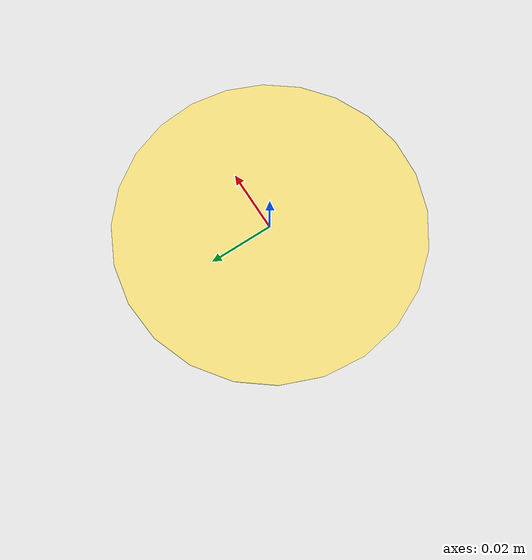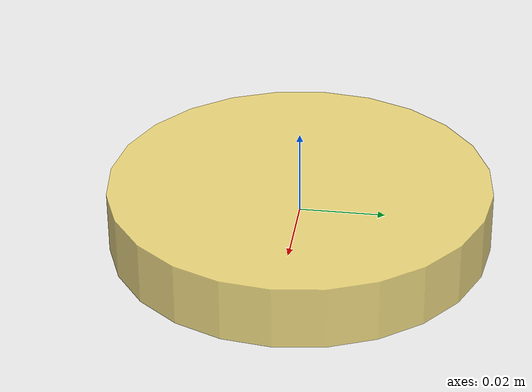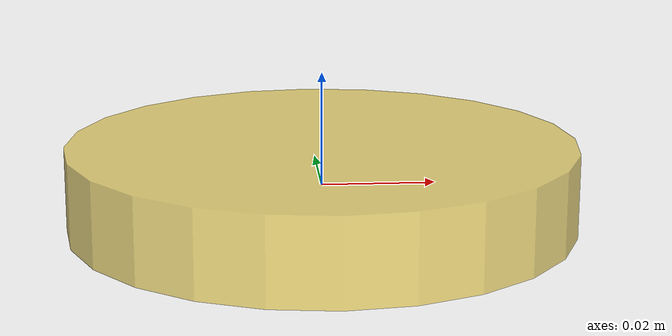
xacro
<?xml version="1.0"?>
<robot xmlns:xacro="http://www.ros.org/wiki/xacro" name="petri_dish">

  <link name="petri_dish_link">

    <!-- Visual representation: 90 mm diameter x 15 mm height -->
    <visual>
      <origin xyz="0 0 0" rpy="0 0 0"/>
      <geometry>
        <cylinder radius="0.045" length="0.015"/>
      </geometry>
      <material name="petri_material">
        <color rgba="0.95 0.85 0.40 0.8"/>
      </material>
    </visual>

    <!-- Collision representation -->
    <collision>
      <origin xyz="0 0 0" rpy="0 0 0"/>
      <geometry>
        <cylinder radius="0.045" length="0.015"/>
      </geometry>
    </collision>

    <!-- Inertial properties for 18g dish -->
    <inertial>
      <origin xyz="0 0 0" rpy="0 0 0"/>
      <mass value="0.018"/>
      <inertia
        ixx="0.00000945"
        ixy="0.0"
        ixz="0.0"
        iyy="0.00000945"
        iyz="0.0"
        izz="0.00001822"/>
    </inertial>

  </link>

  <!-- Gazebo properties -->
  <!-- MODEL-LEVEL GAZEBO PROPERTIES                             -->

  <gazebo>
    <static>false</static>
  </gazebo>

  <!-- PETRI DISH LINK GAZEBO PROPERTIES                        -->

  <gazebo reference="petri_dish_link">

    <material>Gazebo/AmberTransparent</material>

    <visual>
      <material>
        <ambient>0.95 0.85 0.40 0.8</ambient>
        <diffuse>0.95 0.85 0.40 0.8</diffuse>
        <specular>0.5 0.5 0.5 1.0</specular>
      </material>
    </visual>

    <mu1>1.0</mu1>
    <mu2>1.0</mu2>
    <kp>1000000.0</kp>
    <kd>1.0</kd>

  </gazebo>
</robot>
